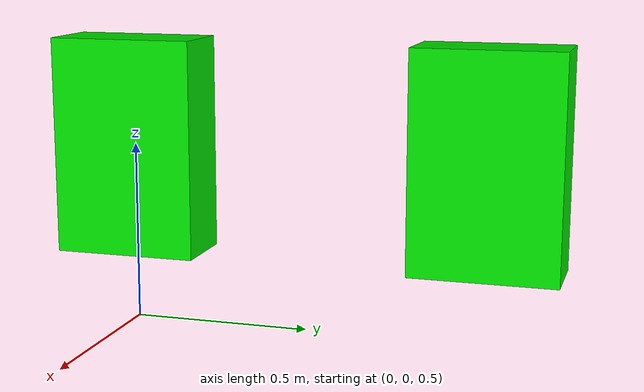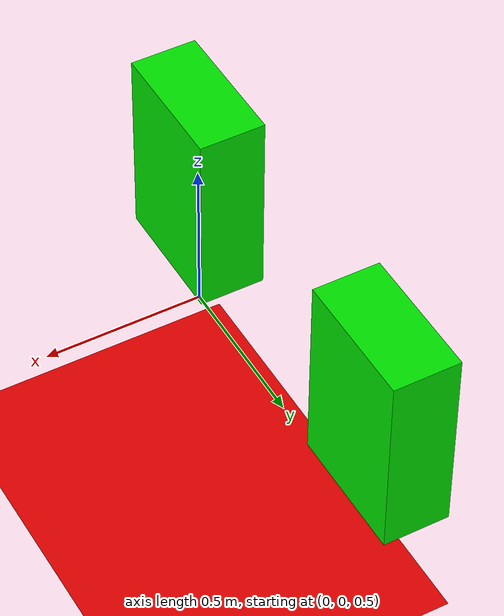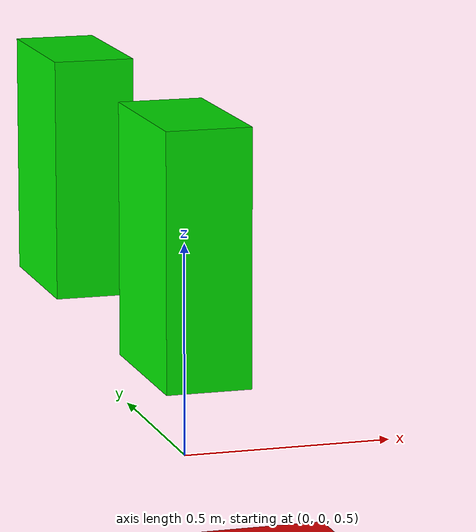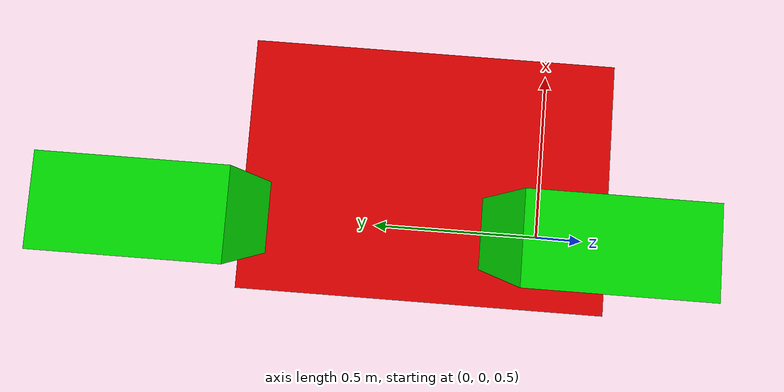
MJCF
<mujoco>
    <worldbody>
        <light diffuse=".5 .5 .5" pos="0 0 3" dir="0 0 -1"/>
        <geom type="plane" size="1 1 0.1" rgba=".9 0 0 1"/>
        <body pos="0 0 1">
            <joint type="free"/>
            <geom type="box" size=".1 .2 .3" rgba="0 .9 0 1"/>
        </body>
        <body pos="0 1 1">
            <joint type="free"/>
            <geom type="box" size=".1 .2 .3" rgba="0 .9 0 1"/>
        </body>
        <body pos="0 1 1">
            <joint type="free"/>
            <geom type="sphere" size=".1 .2 .3" rgba="0 .9 0 1"/>
        </body>
    </worldbody>
</mujoco>
